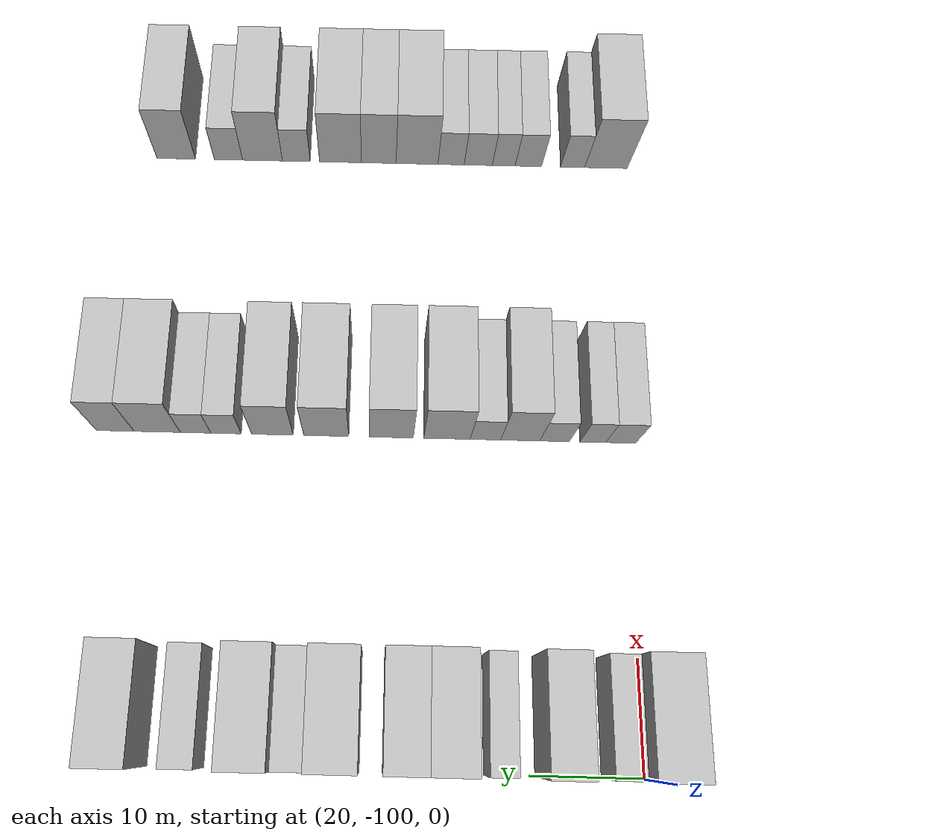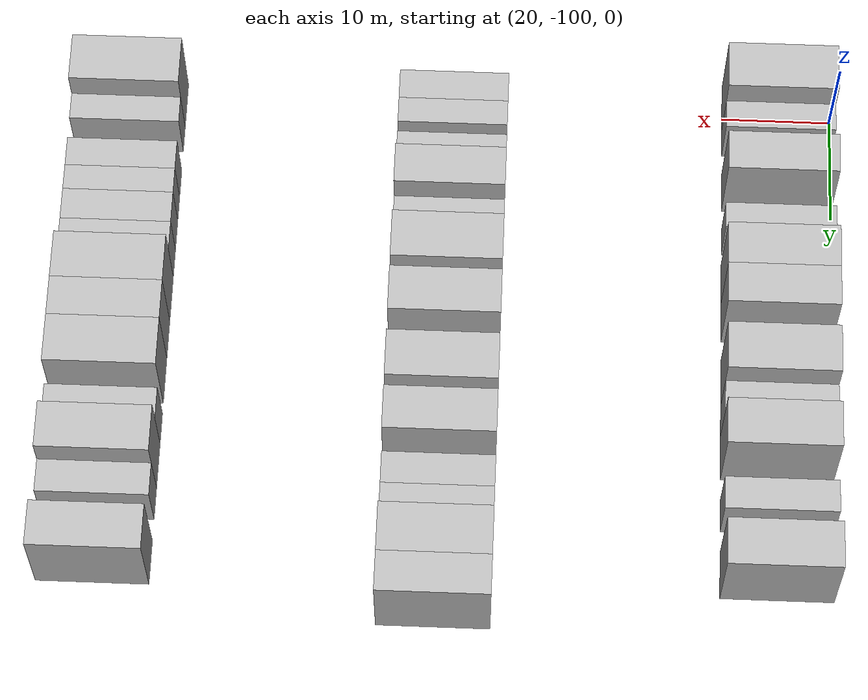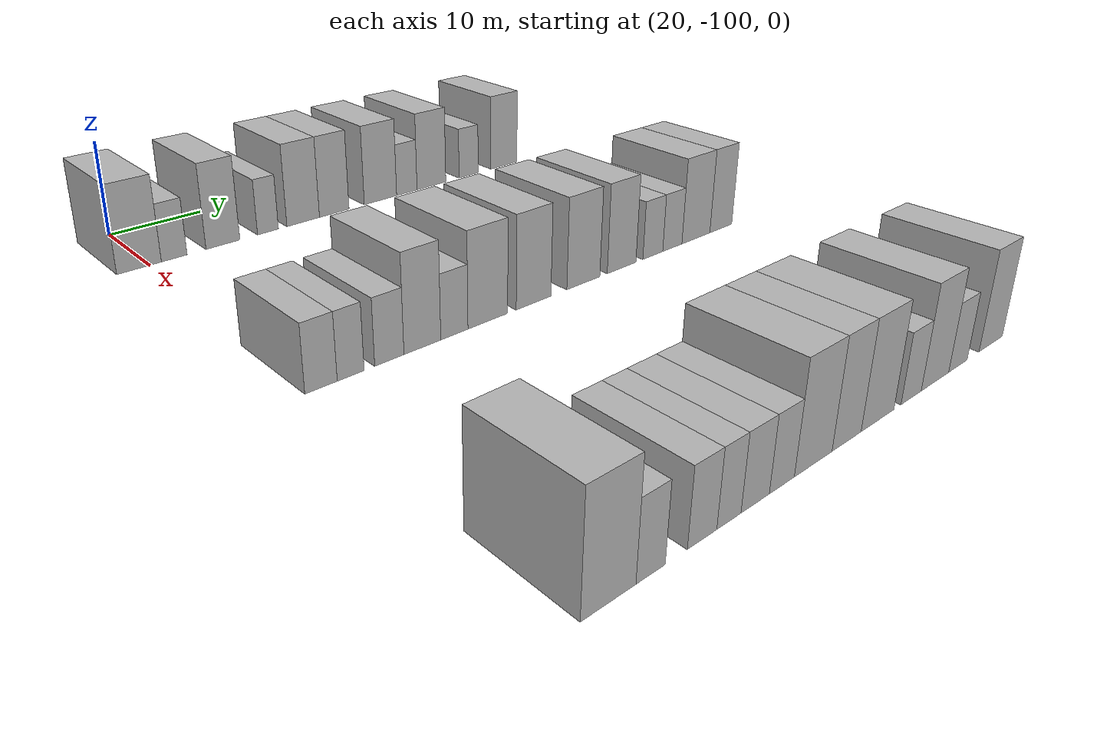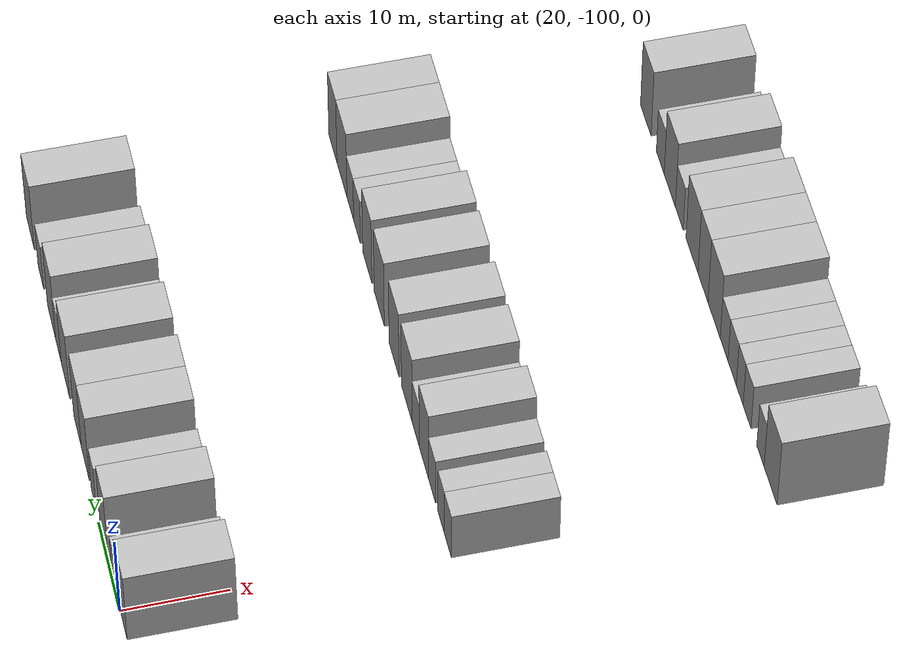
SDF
<sdf version="1.6">
 <world name="default">
  <model name="building_85">
   <static>1</static>
   <pose>25.0000 -101.0731 0 0.000000 0.000000 0.000000</pose>
   <link name="link">
    <pose>0 0 4.50 0 0 0</pose>
    <collision name="collision"><geometry><box><size>10.0000 4.4258 9.0000</size></box></geometry></collision>
    <visual name="visual">
     <cast_shadows>0</cast_shadows>
     <geometry><box><size>10.0000 4.4258 9.0000</size></box></geometry>
     <material>
      <script>
       <uri>model://HANNAS_wall/materials/scripts</uri>
       <uri>model://HANNAS_wall/materials/textures</uri>
       <name>vrc/HANNAS_wall</name>
      </script>
     </material>
    </visual>
   </link>
  </model>
  <model name="building_86">
   <static>1</static>
   <pose>25.0000 -97.5372 0 0.000000 0.000000 0.000000</pose>
   <link name="link">
    <pose>0 0 3.00 0 0 0</pose>
    <collision name="collision"><geometry><box><size>10.0000 2.6460 6.0000</size></box></geometry></collision>
    <visual name="visual">
     <cast_shadows>0</cast_shadows>
     <geometry><box><size>10.0000 2.6460 6.0000</size></box></geometry>
     <material>
      <script>
       <uri>model://HANNAS_wall/materials/scripts</uri>
       <uri>model://HANNAS_wall/materials/textures</uri>
       <name>vrc/HANNAS_wall</name>
      </script>
     </material>
    </visual>
   </link>
  </model>
  <model name="building_87">
   <static>1</static>
   <pose>25.0000 -92.3547 0 0.000000 0.000000 0.000000</pose>
   <link name="link">
    <pose>0 0 4.50 0 0 0</pose>
    <collision name="collision"><geometry><box><size>10.0000 3.7190 9.0000</size></box></geometry></collision>
    <visual name="visual">
     <cast_shadows>0</cast_shadows>
     <geometry><box><size>10.0000 3.7190 9.0000</size></box></geometry>
     <material>
      <script>
       <uri>model://HANNAS_wall/materials/scripts</uri>
       <uri>model://HANNAS_wall/materials/textures</uri>
       <name>vrc/HANNAS_wall</name>
      </script>
     </material>
    </visual>
   </link>
  </model>
  <model name="building_88">
   <static>1</static>
   <pose>25.0000 -87.2801 0 0.000000 0.000000 0.000000</pose>
   <link name="link">
    <pose>0 0 3.00 0 0 0</pose>
    <collision name="collision"><geometry><box><size>10.0000 2.4302 6.0000</size></box></geometry></collision>
    <visual name="visual">
     <cast_shadows>0</cast_shadows>
     <geometry><box><size>10.0000 2.4302 6.0000</size></box></geometry>
     <material>
      <script>
       <uri>model://HANNAS_wall/materials/scripts</uri>
       <uri>model://HANNAS_wall/materials/textures</uri>
       <name>vrc/HANNAS_wall</name>
      </script>
     </material>
    </visual>
   </link>
  </model>
  <model name="building_89">
   <static>1</static>
   <pose>25.0000 -83.0822 0 0.000000 0.000000 0.000000</pose>
   <link name="link">
    <pose>0 0 4.50 0 0 0</pose>
    <collision name="collision"><geometry><box><size>10.0000 3.9657 9.0000</size></box></geometry></collision>
    <visual name="visual">
     <cast_shadows>0</cast_shadows>
     <geometry><box><size>10.0000 3.9657 9.0000</size></box></geometry>
     <material>
      <script>
       <uri>model://HANNAS_wall/materials/scripts</uri>
       <uri>model://HANNAS_wall/materials/textures</uri>
       <name>vrc/HANNAS_wall</name>
      </script>
     </material>
    </visual>
   </link>
  </model>
  <model name="building_90">
   <static>1</static>
   <pose>25.0000 -79.2211 0 0.000000 0.000000 0.000000</pose>
   <link name="link">
    <pose>0 0 4.50 0 0 0</pose>
    <collision name="collision"><geometry><box><size>10.0000 3.7565 9.0000</size></box></geometry></collision>
    <visual name="visual">
     <cast_shadows>0</cast_shadows>
     <geometry><box><size>10.0000 3.7565 9.0000</size></box></geometry>
     <material>
      <script>
       <uri>model://HANNAS_wall/materials/scripts</uri>
       <uri>model://HANNAS_wall/materials/textures</uri>
       <name>vrc/HANNAS_wall</name>
      </script>
     </material>
    </visual>
   </link>
  </model>
  <model name="building_91">
   <static>1</static>
   <pose>25.0000 -73.1525 0 0.000000 0.000000 0.000000</pose>
   <link name="link">
    <pose>0 0 4.50 0 0 0</pose>
    <collision name="collision"><geometry><box><size>10.0000 4.3806 9.0000</size></box></geometry></collision>
    <visual name="visual">
     <cast_shadows>0</cast_shadows>
     <geometry><box><size>10.0000 4.3806 9.0000</size></box></geometry>
     <material>
      <script>
       <uri>model://HANNAS_wall/materials/scripts</uri>
       <uri>model://HANNAS_wall/materials/textures</uri>
       <name>vrc/HANNAS_wall</name>
      </script>
     </material>
    </visual>
   </link>
  </model>
  <model name="building_92">
   <static>1</static>
   <pose>25.0000 -69.5285 0 0.000000 0.000000 0.000000</pose>
   <link name="link">
    <pose>0 0 3.00 0 0 0</pose>
    <collision name="collision"><geometry><box><size>10.0000 2.8675 6.0000</size></box></geometry></collision>
    <visual name="visual">
     <cast_shadows>0</cast_shadows>
     <geometry><box><size>10.0000 2.8675 6.0000</size></box></geometry>
     <material>
      <script>
       <uri>model://HANNAS_wall/materials/scripts</uri>
       <uri>model://HANNAS_wall/materials/textures</uri>
       <name>vrc/HANNAS_wall</name>
      </script>
     </material>
    </visual>
   </link>
  </model>
  <model name="building_93">
   <static>1</static>
   <pose>25.0000 -65.9982 0 0.000000 0.000000 0.000000</pose>
   <link name="link">
    <pose>0 0 4.50 0 0 0</pose>
    <collision name="collision"><geometry><box><size>10.0000 4.1932 9.0000</size></box></geometry></collision>
    <visual name="visual">
     <cast_shadows>0</cast_shadows>
     <geometry><box><size>10.0000 4.1932 9.0000</size></box></geometry>
     <material>
      <script>
       <uri>model://HANNAS_wall/materials/scripts</uri>
       <uri>model://HANNAS_wall/materials/textures</uri>
       <name>vrc/HANNAS_wall</name>
      </script>
     </material>
    </visual>
   </link>
  </model>
  <model name="building_94">
   <static>1</static>
   <pose>25.0000 -60.4333 0 0.000000 0.000000 0.000000</pose>
   <link name="link">
    <pose>0 0 3.00 0 0 0</pose>
    <collision name="collision"><geometry><box><size>10.0000 2.9366 6.0000</size></box></geometry></collision>
    <visual name="visual">
     <cast_shadows>0</cast_shadows>
     <geometry><box><size>10.0000 2.9366 6.0000</size></box></geometry>
     <material>
      <script>
       <uri>model://HANNAS_wall/materials/scripts</uri>
       <uri>model://HANNAS_wall/materials/textures</uri>
       <name>vrc/HANNAS_wall</name>
      </script>
     </material>
    </visual>
   </link>
  </model>
  <model name="building_95">
   <static>1</static>
   <pose>25.0000 -54.8550 0 0.000000 0.000000 0.000000</pose>
   <link name="link">
    <pose>0 0 4.50 0 0 0</pose>
    <collision name="collision"><geometry><box><size>10.0000 4.2199 9.0000</size></box></geometry></collision>
    <visual name="visual">
     <cast_shadows>0</cast_shadows>
     <geometry><box><size>10.0000 4.2199 9.0000</size></box></geometry>
     <material>
      <script>
       <uri>model://HANNAS_wall/materials/scripts</uri>
       <uri>model://HANNAS_wall/materials/textures</uri>
       <name>vrc/HANNAS_wall</name>
      </script>
     </material>
    </visual>
   </link>
  </model>
  <model name="building_305">
   <static>1</static>
   <pose>55.0000 -99.5127 0 0.000000 0.000000 0.000000</pose>
   <link name="link">
    <pose>0 0 3.00 0 0 0</pose>
    <collision name="collision"><geometry><box><size>10.0000 2.8704 6.0000</size></box></geometry></collision>
    <visual name="visual">
     <cast_shadows>0</cast_shadows>
     <geometry><box><size>10.0000 2.8704 6.0000</size></box></geometry>
     <material>
      <script>
       <uri>model://HANNAS_wall/materials/scripts</uri>
       <uri>model://HANNAS_wall/materials/textures</uri>
       <name>vrc/HANNAS_wall</name>
      </script>
     </material>
    </visual>
   </link>
  </model>
  <model name="building_306">
   <static>1</static>
   <pose>55.0000 -96.8412 0 0.000000 0.000000 0.000000</pose>
   <link name="link">
    <pose>0 0 3.00 0 0 0</pose>
    <collision name="collision"><geometry><box><size>10.0000 2.4726 6.0000</size></box></geometry></collision>
    <visual name="visual">
     <cast_shadows>0</cast_shadows>
     <geometry><box><size>10.0000 2.4726 6.0000</size></box></geometry>
     <material>
      <script>
       <uri>model://HANNAS_wall/materials/scripts</uri>
       <uri>model://HANNAS_wall/materials/textures</uri>
       <name>vrc/HANNAS_wall</name>
      </script>
     </material>
    </visual>
   </link>
  </model>
  <model name="building_307">
   <static>1</static>
   <pose>55.0000 -93.1839 0 0.000000 0.000000 0.000000</pose>
   <link name="link">
    <pose>0 0 3.00 0 0 0</pose>
    <collision name="collision"><geometry><box><size>10.0000 2.8420 6.0000</size></box></geometry></collision>
    <visual name="visual">
     <cast_shadows>0</cast_shadows>
     <geometry><box><size>10.0000 2.8420 6.0000</size></box></geometry>
     <material>
      <script>
       <uri>model://HANNAS_wall/materials/scripts</uri>
       <uri>model://HANNAS_wall/materials/textures</uri>
       <name>vrc/HANNAS_wall</name>
      </script>
     </material>
    </visual>
   </link>
  </model>
  <model name="building_308">
   <static>1</static>
   <pose>55.0000 -89.8870 0 0.000000 0.000000 0.000000</pose>
   <link name="link">
    <pose>0 0 4.50 0 0 0</pose>
    <collision name="collision"><geometry><box><size>10.0000 3.7516 9.0000</size></box></geometry></collision>
    <visual name="visual">
     <cast_shadows>0</cast_shadows>
     <geometry><box><size>10.0000 3.7516 9.0000</size></box></geometry>
     <material>
      <script>
       <uri>model://HANNAS_wall/materials/scripts</uri>
       <uri>model://HANNAS_wall/materials/textures</uri>
       <name>vrc/HANNAS_wall</name>
      </script>
     </material>
    </visual>
   </link>
  </model>
  <model name="building_309">
   <static>1</static>
   <pose>55.0000 -86.5588 0 0.000000 0.000000 0.000000</pose>
   <link name="link">
    <pose>0 0 3.00 0 0 0</pose>
    <collision name="collision"><geometry><box><size>10.0000 2.9049 6.0000</size></box></geometry></collision>
    <visual name="visual">
     <cast_shadows>0</cast_shadows>
     <geometry><box><size>10.0000 2.9049 6.0000</size></box></geometry>
     <material>
      <script>
       <uri>model://HANNAS_wall/materials/scripts</uri>
       <uri>model://HANNAS_wall/materials/textures</uri>
       <name>vrc/HANNAS_wall</name>
      </script>
     </material>
    </visual>
   </link>
  </model>
  <model name="building_310">
   <static>1</static>
   <pose>55.0000 -82.8778 0 0.000000 0.000000 0.000000</pose>
   <link name="link">
    <pose>0 0 4.50 0 0 0</pose>
    <collision name="collision"><geometry><box><size>10.0000 4.4571 9.0000</size></box></geometry></collision>
    <visual name="visual">
     <cast_shadows>0</cast_shadows>
     <geometry><box><size>10.0000 4.4571 9.0000</size></box></geometry>
     <material>
      <script>
       <uri>model://HANNAS_wall/materials/scripts</uri>
       <uri>model://HANNAS_wall/materials/textures</uri>
       <name>vrc/HANNAS_wall</name>
      </script>
     </material>
    </visual>
   </link>
  </model>
  <model name="building_311">
   <static>1</static>
   <pose>55.0000 -77.5526 0 0.000000 0.000000 0.000000</pose>
   <link name="link">
    <pose>0 0 4.50 0 0 0</pose>
    <collision name="collision"><geometry><box><size>10.0000 4.1934 9.0000</size></box></geometry></collision>
    <visual name="visual">
     <cast_shadows>0</cast_shadows>
     <geometry><box><size>10.0000 4.1934 9.0000</size></box></geometry>
     <material>
      <script>
       <uri>model://HANNAS_wall/materials/scripts</uri>
       <uri>model://HANNAS_wall/materials/textures</uri>
       <name>vrc/HANNAS_wall</name>
      </script>
     </material>
    </visual>
   </link>
  </model>
  <model name="building_312">
   <static>1</static>
   <pose>55.0000 -71.2942 0 0.000000 0.000000 0.000000</pose>
   <link name="link">
    <pose>0 0 4.50 0 0 0</pose>
    <collision name="collision"><geometry><box><size>10.0000 4.3234 9.0000</size></box></geometry></collision>
    <visual name="visual">
     <cast_shadows>0</cast_shadows>
     <geometry><box><size>10.0000 4.3234 9.0000</size></box></geometry>
     <material>
      <script>
       <uri>model://HANNAS_wall/materials/scripts</uri>
       <uri>model://HANNAS_wall/materials/textures</uri>
       <name>vrc/HANNAS_wall</name>
      </script>
     </material>
    </visual>
   </link>
  </model>
  <model name="building_313">
   <static>1</static>
   <pose>55.0000 -66.1292 0 0.000000 0.000000 0.000000</pose>
   <link name="link">
    <pose>0 0 4.50 0 0 0</pose>
    <collision name="collision"><geometry><box><size>10.0000 4.0066 9.0000</size></box></geometry></collision>
    <visual name="visual">
     <cast_shadows>0</cast_shadows>
     <geometry><box><size>10.0000 4.0066 9.0000</size></box></geometry>
     <material>
      <script>
       <uri>model://HANNAS_wall/materials/scripts</uri>
       <uri>model://HANNAS_wall/materials/textures</uri>
       <name>vrc/HANNAS_wall</name>
      </script>
     </material>
    </visual>
   </link>
  </model>
  <model name="building_314">
   <static>1</static>
   <pose>55.0000 -61.6623 0 0.000000 0.000000 0.000000</pose>
   <link name="link">
    <pose>0 0 3.00 0 0 0</pose>
    <collision name="collision"><geometry><box><size>10.0000 2.9271 6.0000</size></box></geometry></collision>
    <visual name="visual">
     <cast_shadows>0</cast_shadows>
     <geometry><box><size>10.0000 2.9271 6.0000</size></box></geometry>
     <material>
      <script>
       <uri>model://HANNAS_wall/materials/scripts</uri>
       <uri>model://HANNAS_wall/materials/textures</uri>
       <name>vrc/HANNAS_wall</name>
      </script>
     </material>
    </visual>
   </link>
  </model>
  <model name="building_315">
   <static>1</static>
   <pose>55.0000 -58.7360 0 0.000000 0.000000 0.000000</pose>
   <link name="link">
    <pose>0 0 3.00 0 0 0</pose>
    <collision name="collision"><geometry><box><size>10.0000 2.9255 6.0000</size></box></geometry></collision>
    <visual name="visual">
     <cast_shadows>0</cast_shadows>
     <geometry><box><size>10.0000 2.9255 6.0000</size></box></geometry>
     <material>
      <script>
       <uri>model://HANNAS_wall/materials/scripts</uri>
       <uri>model://HANNAS_wall/materials/textures</uri>
       <name>vrc/HANNAS_wall</name>
      </script>
     </material>
    </visual>
   </link>
  </model>
  <model name="building_316">
   <static>1</static>
   <pose>55.0000 -55.0509 0 0.000000 0.000000 0.000000</pose>
   <link name="link">
    <pose>0 0 4.50 0 0 0</pose>
    <collision name="collision"><geometry><box><size>10.0000 4.4447 9.0000</size></box></geometry></collision>
    <visual name="visual">
     <cast_shadows>0</cast_shadows>
     <geometry><box><size>10.0000 4.4447 9.0000</size></box></geometry>
     <material>
      <script>
       <uri>model://HANNAS_wall/materials/scripts</uri>
       <uri>model://HANNAS_wall/materials/textures</uri>
       <name>vrc/HANNAS_wall</name>
      </script>
     </material>
    </visual>
   </link>
  </model>
  <model name="building_317">
   <static>1</static>
   <pose>55.0000 -51.0083 0 0.000000 0.000000 0.000000</pose>
   <link name="link">
    <pose>0 0 4.50 0 0 0</pose>
    <collision name="collision"><geometry><box><size>10.0000 3.6405 9.0000</size></box></geometry></collision>
    <visual name="visual">
     <cast_shadows>0</cast_shadows>
     <geometry><box><size>10.0000 3.6405 9.0000</size></box></geometry>
     <material>
      <script>
       <uri>model://HANNAS_wall/materials/scripts</uri>
       <uri>model://HANNAS_wall/materials/textures</uri>
       <name>vrc/HANNAS_wall</name>
      </script>
     </material>
    </visual>
   </link>
  </model>
  <model name="building_529">
   <static>1</static>
   <pose>85.0000 -99.5698 0 0.000000 0.000000 0.000000</pose>
   <link name="link">
    <pose>0 0 4.50 0 0 0</pose>
    <collision name="collision"><geometry><box><size>10.0000 4.4719 9.0000</size></box></geometry></collision>
    <visual name="visual">
     <cast_shadows>0</cast_shadows>
     <geometry><box><size>10.0000 4.4719 9.0000</size></box></geometry>
     <material>
      <script>
       <uri>model://HANNAS_wall/materials/scripts</uri>
       <uri>model://HANNAS_wall/materials/textures</uri>
       <name>vrc/HANNAS_wall</name>
      </script>
     </material>
    </visual>
   </link>
  </model>
  <model name="building_530">
   <static>1</static>
   <pose>85.0000 -96.0680 0 0.000000 0.000000 0.000000</pose>
   <link name="link">
    <pose>0 0 3.00 0 0 0</pose>
    <collision name="collision"><geometry><box><size>10.0000 2.5317 6.0000</size></box></geometry></collision>
    <visual name="visual">
     <cast_shadows>0</cast_shadows>
     <geometry><box><size>10.0000 2.5317 6.0000</size></box></geometry>
     <material>
      <script>
       <uri>model://HANNAS_wall/materials/scripts</uri>
       <uri>model://HANNAS_wall/materials/textures</uri>
       <name>vrc/HANNAS_wall</name>
      </script>
     </material>
    </visual>
   </link>
  </model>
  <model name="building_531">
   <static>1</static>
   <pose>85.0000 -91.4105 0 0.000000 0.000000 0.000000</pose>
   <link name="link">
    <pose>0 0 3.00 0 0 0</pose>
    <collision name="collision"><geometry><box><size>10.0000 2.7833 6.0000</size></box></geometry></collision>
    <visual name="visual">
     <cast_shadows>0</cast_shadows>
     <geometry><box><size>10.0000 2.7833 6.0000</size></box></geometry>
     <material>
      <script>
       <uri>model://HANNAS_wall/materials/scripts</uri>
       <uri>model://HANNAS_wall/materials/textures</uri>
       <name>vrc/HANNAS_wall</name>
      </script>
     </material>
    </visual>
   </link>
  </model>
  <model name="building_532">
   <static>1</static>
   <pose>85.0000 -88.8145 0 0.000000 0.000000 0.000000</pose>
   <link name="link">
    <pose>0 0 3.00 0 0 0</pose>
    <collision name="collision"><geometry><box><size>10.0000 2.4086 6.0000</size></box></geometry></collision>
    <visual name="visual">
     <cast_shadows>0</cast_shadows>
     <geometry><box><size>10.0000 2.4086 6.0000</size></box></geometry>
     <material>
      <script>
       <uri>model://HANNAS_wall/materials/scripts</uri>
       <uri>model://HANNAS_wall/materials/textures</uri>
       <name>vrc/HANNAS_wall</name>
      </script>
     </material>
    </visual>
   </link>
  </model>
  <model name="building_533">
   <static>1</static>
   <pose>85.0000 -86.1273 0 0.000000 0.000000 0.000000</pose>
   <link name="link">
    <pose>0 0 3.00 0 0 0</pose>
    <collision name="collision"><geometry><box><size>10.0000 2.9657 6.0000</size></box></geometry></collision>
    <visual name="visual">
     <cast_shadows>0</cast_shadows>
     <geometry><box><size>10.0000 2.9657 6.0000</size></box></geometry>
     <material>
      <script>
       <uri>model://HANNAS_wall/materials/scripts</uri>
       <uri>model://HANNAS_wall/materials/textures</uri>
       <name>vrc/HANNAS_wall</name>
      </script>
     </material>
    </visual>
   </link>
  </model>
  <model name="building_534">
   <static>1</static>
   <pose>85.0000 -83.2650 0 0.000000 0.000000 0.000000</pose>
   <link name="link">
    <pose>0 0 3.00 0 0 0</pose>
    <collision name="collision"><geometry><box><size>10.0000 2.7589 6.0000</size></box></geometry></collision>
    <visual name="visual">
     <cast_shadows>0</cast_shadows>
     <geometry><box><size>10.0000 2.7589 6.0000</size></box></geometry>
     <material>
      <script>
       <uri>model://HANNAS_wall/materials/scripts</uri>
       <uri>model://HANNAS_wall/materials/textures</uri>
       <name>vrc/HANNAS_wall</name>
      </script>
     </material>
    </visual>
   </link>
  </model>
  <model name="building_535">
   <static>1</static>
   <pose>85.0000 -79.6711 0 0.000000 0.000000 0.000000</pose>
   <link name="link">
    <pose>0 0 4.50 0 0 0</pose>
    <collision name="collision"><geometry><box><size>10.0000 4.4289 9.0000</size></box></geometry></collision>
    <visual name="visual">
     <cast_shadows>0</cast_shadows>
     <geometry><box><size>10.0000 4.4289 9.0000</size></box></geometry>
     <material>
      <script>
       <uri>model://HANNAS_wall/materials/scripts</uri>
       <uri>model://HANNAS_wall/materials/textures</uri>
       <name>vrc/HANNAS_wall</name>
      </script>
     </material>
    </visual>
   </link>
  </model>
  <model name="building_536">
   <static>1</static>
   <pose>85.0000 -75.6272 0 0.000000 0.000000 0.000000</pose>
   <link name="link">
    <pose>0 0 4.50 0 0 0</pose>
    <collision name="collision"><geometry><box><size>10.0000 3.6591 9.0000</size></box></geometry></collision>
    <visual name="visual">
     <cast_shadows>0</cast_shadows>
     <geometry><box><size>10.0000 3.6591 9.0000</size></box></geometry>
     <material>
      <script>
       <uri>model://HANNAS_wall/materials/scripts</uri>
       <uri>model://HANNAS_wall/materials/textures</uri>
       <name>vrc/HANNAS_wall</name>
      </script>
     </material>
    </visual>
   </link>
  </model>
  <model name="building_537">
   <static>1</static>
   <pose>85.0000 -71.5909 0 0.000000 0.000000 0.000000</pose>
   <link name="link">
    <pose>0 0 4.50 0 0 0</pose>
    <collision name="collision"><geometry><box><size>10.0000 4.4135 9.0000</size></box></geometry></collision>
    <visual name="visual">
     <cast_shadows>0</cast_shadows>
     <geometry><box><size>10.0000 4.4135 9.0000</size></box></geometry>
     <material>
      <script>
       <uri>model://HANNAS_wall/materials/scripts</uri>
       <uri>model://HANNAS_wall/materials/textures</uri>
       <name>vrc/HANNAS_wall</name>
      </script>
     </material>
    </visual>
   </link>
  </model>
  <model name="building_538">
   <static>1</static>
   <pose>85.0000 -66.9164 0 0.000000 0.000000 0.000000</pose>
   <link name="link">
    <pose>0 0 3.00 0 0 0</pose>
    <collision name="collision"><geometry><box><size>10.0000 2.9355 6.0000</size></box></geometry></collision>
    <visual name="visual">
     <cast_shadows>0</cast_shadows>
     <geometry><box><size>10.0000 2.9355 6.0000</size></box></geometry>
     <material>
      <script>
       <uri>model://HANNAS_wall/materials/scripts</uri>
       <uri>model://HANNAS_wall/materials/textures</uri>
       <name>vrc/HANNAS_wall</name>
      </script>
     </material>
    </visual>
   </link>
  </model>
  <model name="building_539">
   <static>1</static>
   <pose>85.0000 -63.3426 0 0.000000 0.000000 0.000000</pose>
   <link name="link">
    <pose>0 0 4.50 0 0 0</pose>
    <collision name="collision"><geometry><box><size>10.0000 4.2120 9.0000</size></box></geometry></collision>
    <visual name="visual">
     <cast_shadows>0</cast_shadows>
     <geometry><box><size>10.0000 4.2120 9.0000</size></box></geometry>
     <material>
      <script>
       <uri>model://HANNAS_wall/materials/scripts</uri>
       <uri>model://HANNAS_wall/materials/textures</uri>
       <name>vrc/HANNAS_wall</name>
      </script>
     </material>
    </visual>
   </link>
  </model>
  <model name="building_540">
   <static>1</static>
   <pose>85.0000 -59.7452 0 0.000000 0.000000 0.000000</pose>
   <link name="link">
    <pose>0 0 3.00 0 0 0</pose>
    <collision name="collision"><geometry><box><size>10.0000 2.9827 6.0000</size></box></geometry></collision>
    <visual name="visual">
     <cast_shadows>0</cast_shadows>
     <geometry><box><size>10.0000 2.9827 6.0000</size></box></geometry>
     <material>
      <script>
       <uri>model://HANNAS_wall/materials/scripts</uri>
       <uri>model://HANNAS_wall/materials/textures</uri>
       <name>vrc/HANNAS_wall</name>
      </script>
     </material>
    </visual>
   </link>
  </model>
  <model name="building_541">
   <static>1</static>
   <pose>85.0000 -54.2166 0 0.000000 0.000000 0.000000</pose>
   <link name="link">
    <pose>0 0 4.50 0 0 0</pose>
    <collision name="collision"><geometry><box><size>10.0000 4.0745 9.0000</size></box></geometry></collision>
    <visual name="visual">
     <cast_shadows>0</cast_shadows>
     <geometry><box><size>10.0000 4.0745 9.0000</size></box></geometry>
     <material>
      <script>
       <uri>model://HANNAS_wall/materials/scripts</uri>
       <uri>model://HANNAS_wall/materials/textures</uri>
       <name>vrc/HANNAS_wall</name>
      </script>
     </material>
    </visual>
   </link>
  </model>
 </world>
</sdf>
